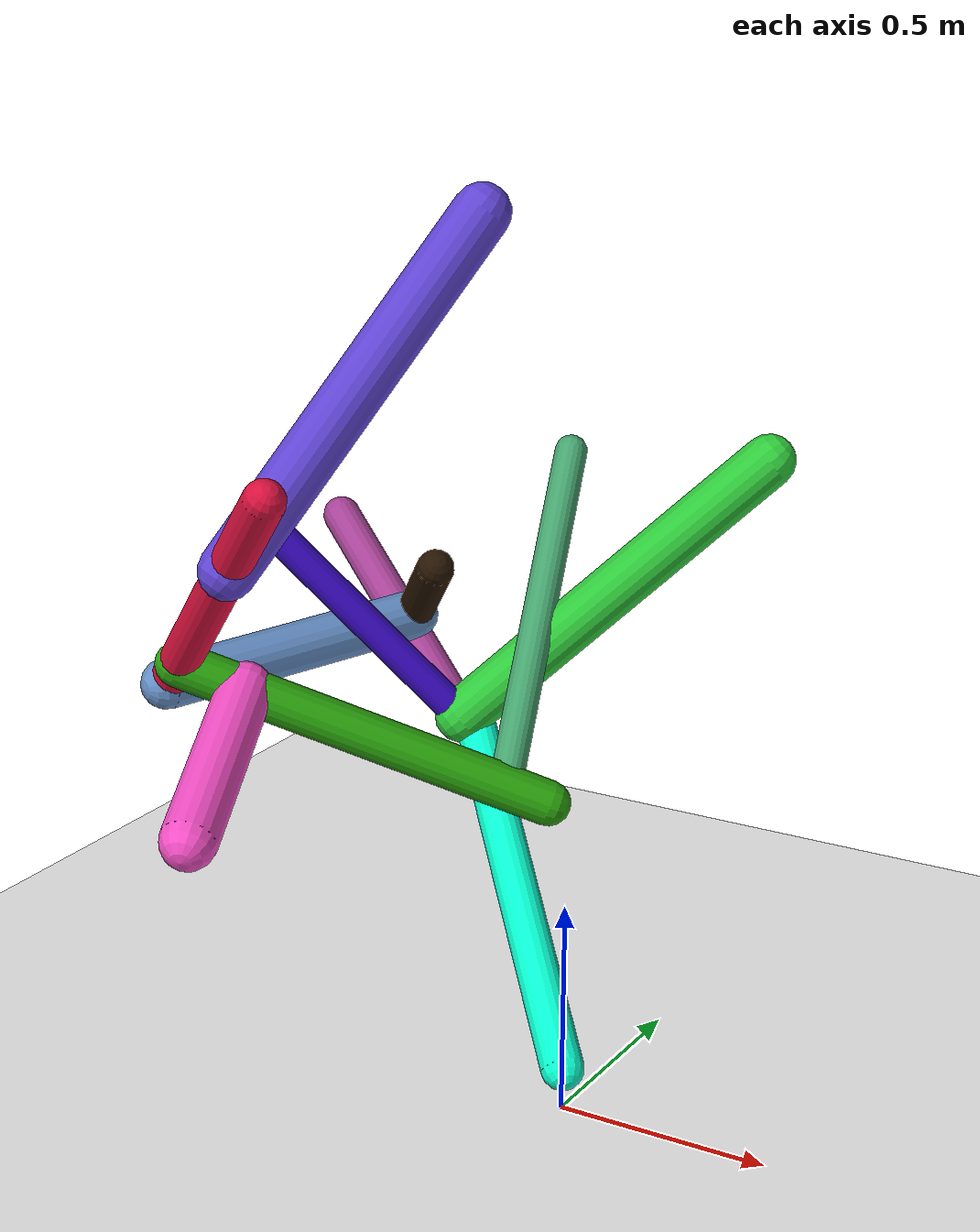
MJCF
<mujoco model="morphology">
  <option timestep="0.01"/>
  <default>
    <default class="/"/>
    <default class="0/"/>
    <default class="0/1/"/>
    <default class="0/1/2/"/>
    <default class="0/1/2/3/"/>
    <default class="0/1/2/3/4/"/>
    <default class="0/1/2/3/4/5/"/>
    <default class="0/1/2/3/4/5/6/"/>
    <default class="0/1/2/3/4/5/6/7/"/>
    <default class="0/1/2/3/4/5/6/8/"/>
    <default class="0/1/2/3/4/5/9/"/>
    <default class="0/1/2/10/"/>
  </default>
  <asset>
    <texture name="texplane" type="2d" builtin="checker" rgb1="0.10000000000000001 0.20000000000000001 0.29999999999999999" rgb2="0.20000000000000001 0.29999999999999999 0.40000000000000002" width="300" height="300"/>
    <material name="MatPlane" class="/" texture="texplane" texrepeat="20 20" specular="1" shininess="1" reflectance="0.5"/>
  </asset>
  <worldbody>
    <light name="//unnamed_light_0" class="/" directional="true" pos="0 0 1.5" dir="0 0 -1.3" cutoff="100" exponent="1" diffuse="1 1 1" specular="0.10000000000000001 0.10000000000000001 0.10000000000000001"/>
    <geom name="ground" class="/" type="plane" size="15 15 0.5" material="MatPlane" rgba="1 1 1 1"/>
    <site name="body" class="/" size="9.9999999999999995e-07 9.9999999999999995e-07 9.9999999999999995e-07" pos="0 0 0.10000000000000001"/>
    <body pos="0 0 0.10000000000000001" name="0/">
      <freejoint name="0/"/>
      <geom name="0/geom" class="0/" type="capsule" contype="1" conaffinity="1" condim="3" size="0.050473291526958827" rgba="0.026910133568905148 0.9817739279838853 0.8100738316217504 1" friction="0.59999999999999998 0.10000000000000001 0.10000000000000001" fromto="0 0 0 -0.54475667076807455 0.53569377762337655 0.56992469191894446"/>
      <site name="0/end0" class="0/" size="0.0050000000000000001" pos="-0.54475667076807455 0.53569377762337655 0.56992469191894446"/>
      <site name="0/attach1" class="0/" size="9.9999999999999995e-07 9.9999999999999995e-07 9.9999999999999995e-07" pos="-0.52338806994000986 0.51468067743687973 0.54756885141771161"/>
      <body pos="-0.52338806994000986 0.51468067743687973 0.54756885141771161" name="0/1/">
        <joint name="0/1/joint/" class="0/" type="hinge" axis="0 1 0" limited="true" range="-57.13779180006356 57.13779180006356"/>
        <geom name="0/1/geom" class="0/1/" type="capsule" contype="1" conaffinity="1" condim="3" size="0.040738141875804913" rgba="0.21950376098294466 0.033065377912472993 0.75897245684331738 1" friction="0.59999999999999998 0.10000000000000001 0.10000000000000001" fromto="0 0 0 -0.41733169977790913 -0.28778232896632294 0.5426946920752953"/>
        <site name="0/1/end1" class="0/1/" size="0.0050000000000000001" pos="-0.41733169977790913 -0.28778232896632294 0.5426946920752953"/>
        <site name="0/1/attach2" class="0/1/" size="9.9999999999999995e-07 9.9999999999999995e-07 9.9999999999999995e-07" pos="-0.032859889997042084 -0.022659423374640365 0.042730729280960285"/>
        <body pos="-0.032859889997042084 -0.022659423374640365 0.042730729280960285" name="0/1/2/">
          <joint name="0/1/2/joint/" class="0/1/" type="hinge" axis="0 0.88346904944390126 0.46848952888478679" limited="true" range="-66.63827548262617 66.63827548262617"/>
          <geom name="0/1/2/geom" class="0/1/2/" type="capsule" contype="1" conaffinity="1" condim="3" size="0.048012738217515026" rgba="0.64414654894368617 0.25182426437848726 0.58050404210314566 1" friction="0.59999999999999998 0.10000000000000001 0.10000000000000001" fromto="0 0 0 -0.52731154123284019 0.27911070008090877 0.37116775713457395"/>
          <site name="0/1/2/end2" class="0/1/2/" size="0.0050000000000000001" pos="-0.52731154123284019 0.27911070008090877 0.37116775713457395"/>
          <site name="0/1/2/attach3" class="0/1/2/" size="9.9999999999999995e-07 9.9999999999999995e-07 9.9999999999999995e-07" pos="-0.22849764787606464 0.12094584221771912 0.16083653180508589"/>
          <body pos="-0.22849764787606464 0.12094584221771912 0.16083653180508589" name="0/1/2/3/">
            <joint name="0/1/2/3/joint/" class="0/1/2/" type="hinge" axis="-0.66092207226182742 -0.45103238921030125 -0.59979312957083752" limited="true" range="-51.364419805107588 51.364419805107588"/>
            <geom name="0/1/2/3/geom" class="0/1/2/3/" type="capsule" contype="1" conaffinity="1" condim="3" size="0.046064898569471942" rgba="0.14892099689010319 0.077200704828121358 0.012486683008382626 1" friction="0.59999999999999998 0.10000000000000001 0.10000000000000001" fromto="0 0 0 0.18348781529004698 -0.16928919957364208 0.22462446900760225"/>
            <site name="0/1/2/3/end3" class="0/1/2/3/" size="0.0050000000000000001" pos="0.18348781529004698 -0.16928919957364208 0.22462446900760225"/>
            <site name="0/1/2/3/attach4" class="0/1/2/3/" size="9.9999999999999995e-07 9.9999999999999995e-07 9.9999999999999995e-07" pos="0.038979484597290275 -0.035963182279092308 0.047718405802672829"/>
            <body pos="0.038979484597290275 -0.035963182279092308 0.047718405802672829" name="0/1/2/3/4/">
              <joint name="0/1/2/3/4/joint/" class="0/1/2/3/" type="hinge" axis="0.83754472850290862 0.3288408331381284 -0.43632847055631274" limited="true" range="-46.335314613076505 46.335314613076505"/>
              <geom name="0/1/2/3/4/geom" class="0/1/2/3/4/" type="capsule" contype="1" conaffinity="1" condim="3" size="0.061507642390661671" rgba="0.39384444010239461 0.559854353741013 0.77739551422978181 1" friction="0.59999999999999998 0.10000000000000001 0.10000000000000001" fromto="0 0 0 -0.29038693169438484 -0.63770891735568913 -0.041754339062428647"/>
              <site name="0/1/2/3/4/end4" class="0/1/2/3/4/" size="0.0050000000000000001" pos="-0.29038693169438484 -0.63770891735568913 -0.041754339062428647"/>
              <site name="0/1/2/3/4/attach5" class="0/1/2/3/4/" size="9.9999999999999995e-07 9.9999999999999995e-07 9.9999999999999995e-07" pos="-0.28851076414594201 -0.63358872927038457 -0.041484567501089746"/>
              <body pos="-0.28851076414594201 -0.63358872927038457 -0.041484567501089746" name="0/1/2/3/4/5/">
                <joint name="0/1/2/3/4/5/joint/" class="0/1/2/3/4/" type="hinge" axis="-6.9388939039072284e-18 -0.06533564651412288 0.99786334399785503" limited="true" range="-66.133756318648636 66.133756318648636"/>
                <geom name="0/1/2/3/4/5/geom" class="0/1/2/3/4/5/" type="capsule" contype="1" conaffinity="1" condim="3" size="0.048861222824459878" rgba="0.84195033927201035 0.061060045257711137 0.23825062978911571 1" friction="0.59999999999999998 0.10000000000000001 0.10000000000000001" fromto="0 0 0 0.46781573562181755 -0.25444832636535025 0.56789480919204793"/>
                <site name="0/1/2/3/4/5/end5" class="0/1/2/3/4/5/" size="0.0050000000000000001" pos="0.46781573562181755 -0.25444832636535025 0.56789480919204793"/>
                <site name="0/1/2/3/4/5/attach6" class="0/1/2/3/4/5/" size="9.9999999999999995e-07 9.9999999999999995e-07 9.9999999999999995e-07" pos="0.053142845575462991 -0.028904774006789917 0.064511609700100336"/>
                <body pos="0.053142845575462991 -0.028904774006789917 0.064511609700100336" name="0/1/2/3/4/5/6/">
                  <joint name="0/1/2/3/4/5/6/joint/" class="0/1/2/3/4/5/" type="hinge" axis="-1.1102230246251565e-16 0.91258441259409162 0.40888835871212681" limited="true" range="-63.551284915514074 63.551284915514074"/>
                  <geom name="0/1/2/3/4/5/6/geom" class="0/1/2/3/4/5/6/" type="capsule" contype="1" conaffinity="1" condim="3" size="0.055319567476538607" rgba="0.15853215755741001 0.61802709279932844 0.04555188494138751 1" friction="0.59999999999999998 0.10000000000000001 0.10000000000000001" fromto="0 0 0 0.74416303572151543 0.43906435756631668 -0.34645713622468682"/>
                  <site name="0/1/2/3/4/5/6/end6" class="0/1/2/3/4/5/6/" size="0.0050000000000000001" pos="0.74416303572151543 0.43906435756631668 -0.34645713622468682"/>
                  <site name="0/1/2/3/4/5/6/attach7" class="0/1/2/3/4/5/6/" size="9.9999999999999995e-07 9.9999999999999995e-07 9.9999999999999995e-07" pos="0.13292478250138204 0.07842708040050031 -0.061885282213818914"/>
                  <body pos="0.13292478250138204 0.07842708040050031 -0.061885282213818914" name="0/1/2/3/4/5/6/7/">
                    <joint name="0/1/2/3/4/5/6/7/joint/" class="0/1/2/3/4/5/6/" type="hinge" axis="-0.60080542822097605 0.62755156520432265 -0.49518872203415004" limited="true" range="-68.007801670613816 68.007801670613816"/>
                    <geom name="0/1/2/3/4/5/6/7/geom" class="0/1/2/3/4/5/6/7/" type="capsule" contype="1" conaffinity="1" condim="3" size="0.066674793043128677" rgba="0.94155377781849481 0.30230948686651027 0.76157778248565633 1" friction="0.59999999999999998 0.10000000000000001 0.10000000000000001" fromto="0 0 0 0.1404361366336222 -0.42337079572427427 -0.19915164560509158"/>
                    <site name="0/1/2/3/4/5/6/7/end7" class="0/1/2/3/4/5/6/7/" size="0.0050000000000000001" pos="0.1404361366336222 -0.42337079572427427 -0.19915164560509158"/>
                  </body>
                  <site name="0/1/2/3/4/5/6/attach8" class="0/1/2/3/4/5/6/" size="9.9999999999999995e-07 9.9999999999999995e-07 9.9999999999999995e-07" pos="0.65650801362084765 0.38734693259535441 -0.30564792308866418"/>
                  <body pos="0.65650801362084765 0.38734693259535441 -0.30564792308866418" name="0/1/2/3/4/5/6/8/">
                    <joint name="0/1/2/3/4/5/6/8/joint/" class="0/1/2/3/4/5/6/" type="hinge" axis="-2.7755575615628914e-17 0.61945413642972458 0.78503284826821385" limited="true" range="-46.170433065215072 46.170433065215072"/>
                    <geom name="0/1/2/3/4/5/6/8/geom" class="0/1/2/3/4/5/6/8/" type="capsule" contype="1" conaffinity="1" condim="3" size="0.040765036172163531" rgba="0.26635226521181288 0.63066099474080939 0.42400101068420448 1" friction="0.59999999999999998 0.10000000000000001 0.10000000000000001" fromto="0 0 0 -0.15655366878052757 0.60162116952440892 0.66542956498211514"/>
                    <site name="0/1/2/3/4/5/6/8/end8" class="0/1/2/3/4/5/6/8/" size="0.0050000000000000001" pos="-0.15655366878052757 0.60162116952440892 0.66542956498211514"/>
                  </body>
                </body>
                <site name="0/1/2/3/4/5/attach9" class="0/1/2/3/4/5/" size="9.9999999999999995e-07 9.9999999999999995e-07 9.9999999999999995e-07" pos="0.29927545104666792 -0.16277805948498442 0.36329897057033766"/>
                <body pos="0.29927545104666792 -0.16277805948498442 0.36329897057033766" name="0/1/2/3/4/5/9/">
                  <geom name="0/1/2/3/4/5/9/geom" class="0/1/2/3/4/5/9/" type="capsule" contype="1" conaffinity="1" condim="3" size="0.06660709761164213" rgba="0.36910512839525156 0.26207960212229109 0.81737789386420601 1" friction="0.59999999999999998 0.10000000000000001 0.10000000000000001" fromto="0 0 0 0.35571509442904459 0.49495221721363891 0.74714309307796412"/>
                  <site name="0/1/2/3/4/5/9/end9" class="0/1/2/3/4/5/9/" size="0.0050000000000000001" pos="0.35571509442904459 0.49495221721363891 0.74714309307796412"/>
                </body>
              </body>
            </body>
          </body>
          <site name="0/1/2/attach10" class="0/1/2/" size="9.9999999999999995e-07 9.9999999999999995e-07 9.9999999999999995e-07" pos="-0.00085179108210505601 0.00045086061399903735 0.00059956469898799847"/>
          <body pos="-0.00085179108210505601 0.00045086061399903735 0.00059956469898799847" name="0/1/2/10/">
            <geom name="0/1/2/10/geom" class="0/1/2/10/" type="capsule" contype="1" conaffinity="1" condim="3" size="0.065316956227176398" rgba="0.18249738935984638 0.78366862086140354 0.22769699241951358 1" friction="0.59999999999999998 0.10000000000000001 0.10000000000000001" fromto="0 0 0 0.60397685976558657 0.43100324923073452 0.63034302714113144"/>
            <site name="0/1/2/10/end10" class="0/1/2/10/" size="0.0050000000000000001" pos="0.60397685976558657 0.43100324923073452 0.63034302714113144"/>
          </body>
        </body>
      </body>
      <camera name="0/iso" class="0/" mode="trackcom" pos="-2.2999999999999998 -2.2999999999999998 1" xyaxes="0.45000000000000001 -0.45000000000000001 0 0.29999999999999999 0.14999999999999999 0.93999999999999995"/>
    </body>
  </worldbody>
  <actuator>
    <motor name="0/1/motor" class="0/1/" ctrllimited="true" ctrlrange="-1 1" gear="90" joint="0/1/joint/"/>
    <motor name="0/1/2/motor" class="0/1/2/" ctrllimited="true" ctrlrange="-1 1" gear="78" joint="0/1/2/joint/"/>
    <motor name="0/1/2/3/motor" class="0/1/2/3/" ctrllimited="true" ctrlrange="-1 1" gear="74" joint="0/1/2/3/joint/"/>
    <motor name="0/1/2/3/4/motor" class="0/1/2/3/4/" ctrllimited="true" ctrlrange="-1 1" gear="96" joint="0/1/2/3/4/joint/"/>
    <motor name="0/1/2/3/4/5/motor" class="0/1/2/3/4/5/" ctrllimited="true" ctrlrange="-1 1" gear="83" joint="0/1/2/3/4/5/joint/"/>
    <motor name="0/1/2/3/4/5/6/motor" class="0/1/2/3/4/5/6/" ctrllimited="true" ctrlrange="-1 1" gear="62" joint="0/1/2/3/4/5/6/joint/"/>
    <motor name="0/1/2/3/4/5/6/7/motor" class="0/1/2/3/4/5/6/7/" ctrllimited="true" ctrlrange="-1 1" gear="98" joint="0/1/2/3/4/5/6/7/joint/"/>
    <motor name="0/1/2/3/4/5/6/8/motor" class="0/1/2/3/4/5/6/8/" ctrllimited="true" ctrlrange="-1 1" gear="67" joint="0/1/2/3/4/5/6/8/joint/"/>
  </actuator>
  <sensor>
    <subtreelinvel name="velocity" body="0/"/>
  </sensor>
</mujoco>
